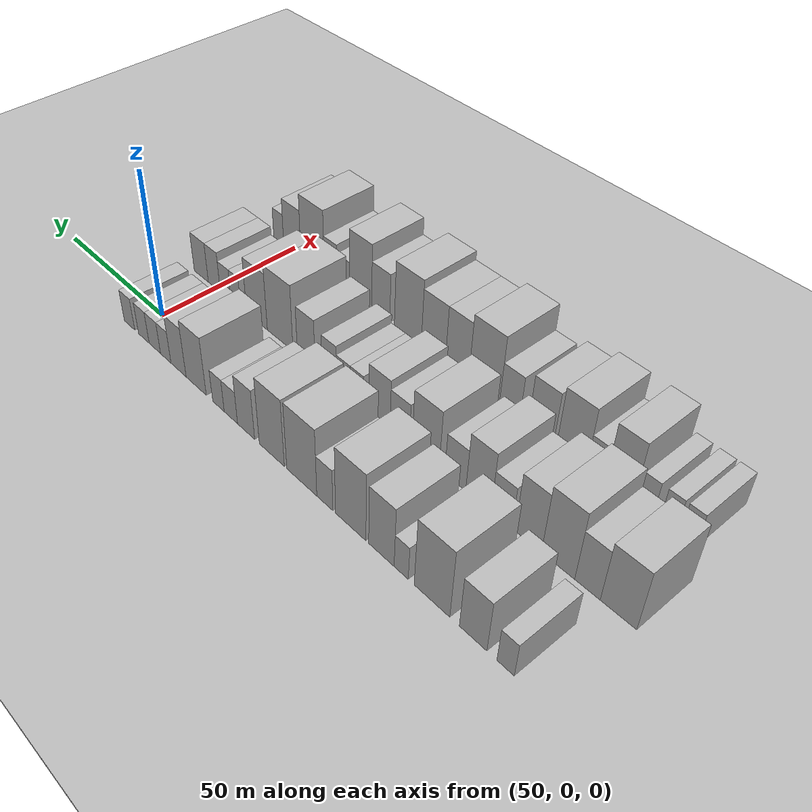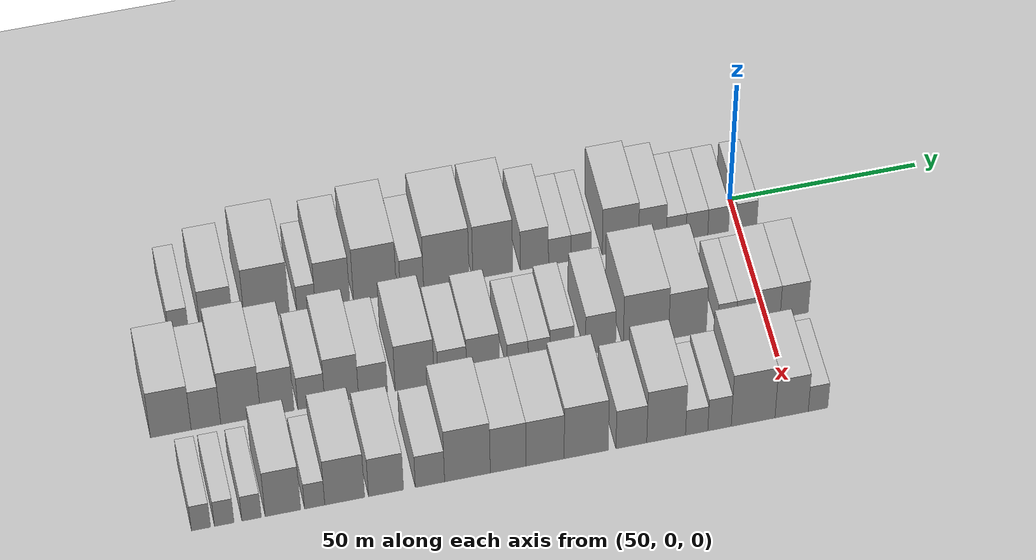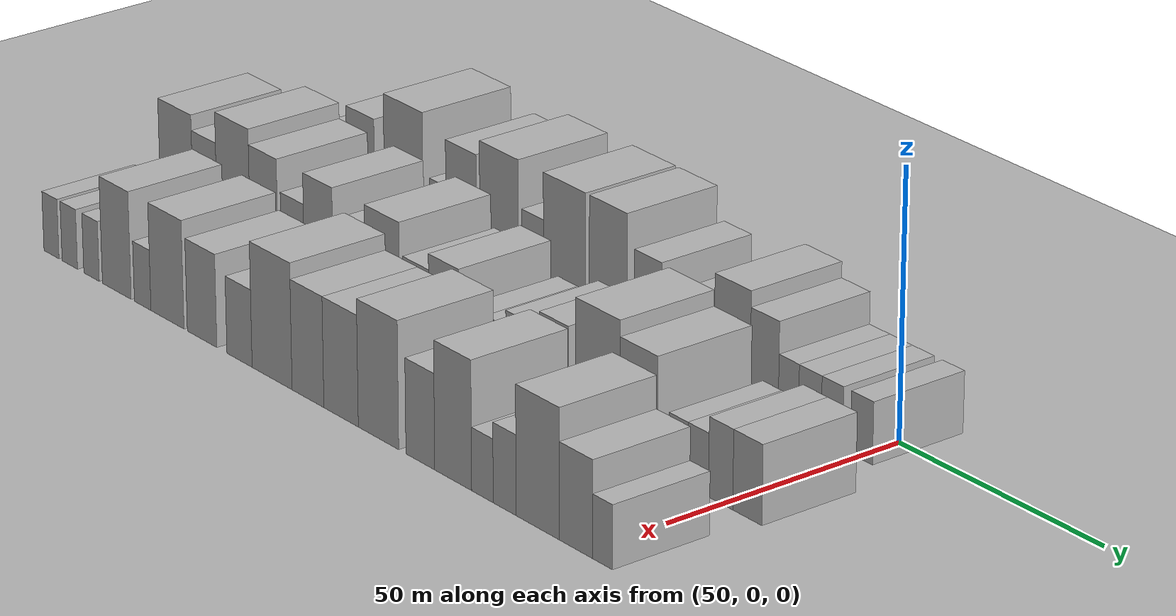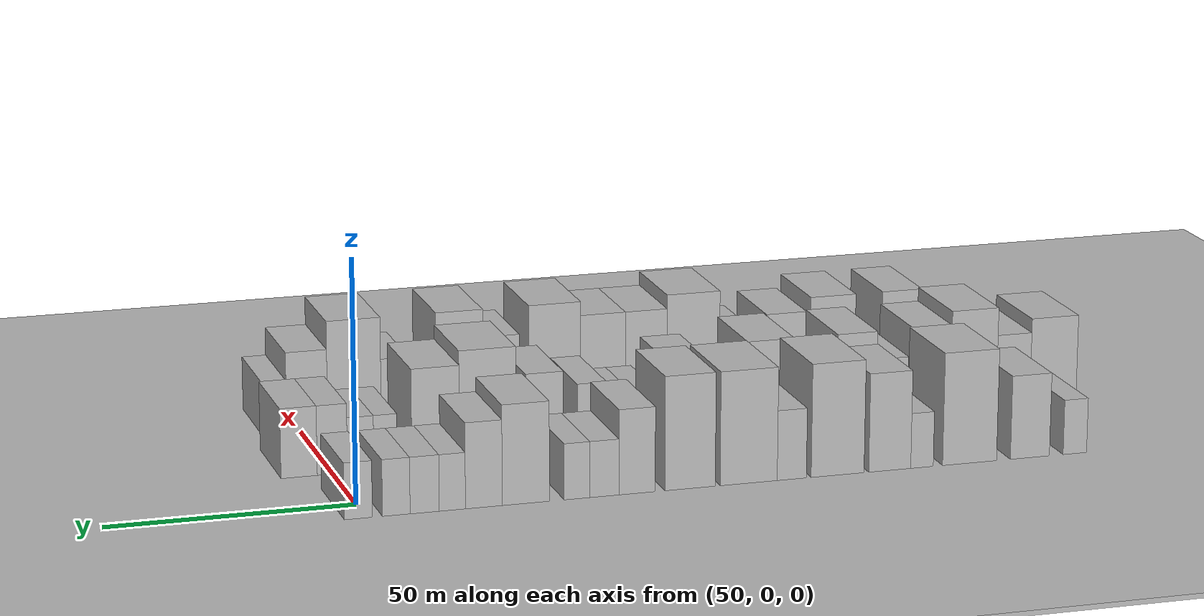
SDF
<sdf version="1.6">
 <world name="default">
  <include><name>ground_plane_1</name><uri>model://HANNAS_ground_plane</uri></include>
  <include>
   <name>ground_plane_2</name>
   <uri>model://HANNAS_ground_plane</uri>
   <pose>100 0 0  0 0 0</pose>
  </include>
  <model name="building_22">
   <static>1</static>
   <pose>50.0000 -147.5729 0 0.000000 0.000000 0.000000</pose>
   <link name="link">
    <pose>0 0 6.00 0 0 0</pose>
    <collision name="collision"><geometry><box><size>20.0000 5.1354 12.0000</size></box></geometry></collision>
    <visual name="visual">
     <cast_shadows>0</cast_shadows>
     <geometry><box><size>20.0000 5.1354 12.0000</size></box></geometry>
     <material>
      <script>
       <uri>model://HANNAS_wall/materials/scripts</uri>
       <uri>model://HANNAS_wall/materials/textures</uri>
       <name>vrc/HANNAS_wall</name>
      </script>
     </material>
    </visual>
   </link>
  </model>
  <model name="building_23">
   <static>1</static>
   <pose>50.0000 -137.7555 0 0.000000 0.000000 0.000000</pose>
   <link name="link">
    <pose>0 0 9.00 0 0 0</pose>
    <collision name="collision"><geometry><box><size>20.0000 8.4995 18.0000</size></box></geometry></collision>
    <visual name="visual">
     <cast_shadows>0</cast_shadows>
     <geometry><box><size>20.0000 8.4995 18.0000</size></box></geometry>
     <material>
      <script>
       <uri>model://HANNAS_wall/materials/scripts</uri>
       <uri>model://HANNAS_wall/materials/textures</uri>
       <name>vrc/HANNAS_wall</name>
      </script>
     </material>
    </visual>
   </link>
  </model>
  <model name="building_24">
   <static>1</static>
   <pose>50.0000 -124.6750 0 0.000000 0.000000 0.000000</pose>
   <link name="link">
    <pose>0 0 12.00 0 0 0</pose>
    <collision name="collision"><geometry><box><size>20.0000 11.6614 24.0000</size></box></geometry></collision>
    <visual name="visual">
     <cast_shadows>0</cast_shadows>
     <geometry><box><size>20.0000 11.6614 24.0000</size></box></geometry>
     <material>
      <script>
       <uri>model://HANNAS_wall/materials/scripts</uri>
       <uri>model://HANNAS_wall/materials/textures</uri>
       <name>vrc/HANNAS_wall</name>
      </script>
     </material>
    </visual>
   </link>
  </model>
  <model name="building_25">
   <static>1</static>
   <pose>50.0000 -114.4293 0 0.000000 0.000000 0.000000</pose>
   <link name="link">
    <pose>0 0 6.00 0 0 0</pose>
    <collision name="collision"><geometry><box><size>20.0000 4.8299 12.0000</size></box></geometry></collision>
    <visual name="visual">
     <cast_shadows>0</cast_shadows>
     <geometry><box><size>20.0000 4.8299 12.0000</size></box></geometry>
     <material>
      <script>
       <uri>model://HANNAS_wall/materials/scripts</uri>
       <uri>model://HANNAS_wall/materials/textures</uri>
       <name>vrc/HANNAS_wall</name>
      </script>
     </material>
    </visual>
   </link>
  </model>
  <model name="building_26">
   <static>1</static>
   <pose>50.0000 -107.5320 0 0.000000 0.000000 0.000000</pose>
   <link name="link">
    <pose>0 0 10.50 0 0 0</pose>
    <collision name="collision"><geometry><box><size>20.0000 8.9648 21.0000</size></box></geometry></collision>
    <visual name="visual">
     <cast_shadows>0</cast_shadows>
     <geometry><box><size>20.0000 8.9648 21.0000</size></box></geometry>
     <material>
      <script>
       <uri>model://HANNAS_wall/materials/scripts</uri>
       <uri>model://HANNAS_wall/materials/textures</uri>
       <name>vrc/HANNAS_wall</name>
      </script>
     </material>
    </visual>
   </link>
  </model>
  <model name="building_27">
   <static>1</static>
   <pose>50.0000 -96.4396 0 0.000000 0.000000 0.000000</pose>
   <link name="link">
    <pose>0 0 12.00 0 0 0</pose>
    <collision name="collision"><geometry><box><size>20.0000 11.2199 24.0000</size></box></geometry></collision>
    <visual name="visual">
     <cast_shadows>0</cast_shadows>
     <geometry><box><size>20.0000 11.2199 24.0000</size></box></geometry>
     <material>
      <script>
       <uri>model://HANNAS_wall/materials/scripts</uri>
       <uri>model://HANNAS_wall/materials/textures</uri>
       <name>vrc/HANNAS_wall</name>
      </script>
     </material>
    </visual>
   </link>
  </model>
  <model name="building_28">
   <static>1</static>
   <pose>50.0000 -86.7593 0 0.000000 0.000000 0.000000</pose>
   <link name="link">
    <pose>0 0 7.50 0 0 0</pose>
    <collision name="collision"><geometry><box><size>20.0000 6.1406 15.0000</size></box></geometry></collision>
    <visual name="visual">
     <cast_shadows>0</cast_shadows>
     <geometry><box><size>20.0000 6.1406 15.0000</size></box></geometry>
     <material>
      <script>
       <uri>model://HANNAS_wall/materials/scripts</uri>
       <uri>model://HANNAS_wall/materials/textures</uri>
       <name>vrc/HANNAS_wall</name>
      </script>
     </material>
    </visual>
   </link>
  </model>
  <model name="building_29">
   <static>1</static>
   <pose>50.0000 -77.7071 0 0.000000 0.000000 0.000000</pose>
   <link name="link">
    <pose>0 0 12.00 0 0 0</pose>
    <collision name="collision"><geometry><box><size>20.0000 11.9637 24.0000</size></box></geometry></collision>
    <visual name="visual">
     <cast_shadows>0</cast_shadows>
     <geometry><box><size>20.0000 11.9637 24.0000</size></box></geometry>
     <material>
      <script>
       <uri>model://HANNAS_wall/materials/scripts</uri>
       <uri>model://HANNAS_wall/materials/textures</uri>
       <name>vrc/HANNAS_wall</name>
      </script>
     </material>
    </visual>
   </link>
  </model>
  <model name="building_30">
   <static>1</static>
   <pose>50.0000 -65.4879 0 0.000000 0.000000 0.000000</pose>
   <link name="link">
    <pose>0 0 12.00 0 0 0</pose>
    <collision name="collision"><geometry><box><size>20.0000 10.4747 24.0000</size></box></geometry></collision>
    <visual name="visual">
     <cast_shadows>0</cast_shadows>
     <geometry><box><size>20.0000 10.4747 24.0000</size></box></geometry>
     <material>
      <script>
       <uri>model://HANNAS_wall/materials/scripts</uri>
       <uri>model://HANNAS_wall/materials/textures</uri>
       <name>vrc/HANNAS_wall</name>
      </script>
     </material>
    </visual>
   </link>
  </model>
  <model name="building_31">
   <static>1</static>
   <pose>50.0000 -54.5210 0 0.000000 0.000000 0.000000</pose>
   <link name="link">
    <pose>0 0 9.00 0 0 0</pose>
    <collision name="collision"><geometry><box><size>20.0000 7.4592 18.0000</size></box></geometry></collision>
    <visual name="visual">
     <cast_shadows>0</cast_shadows>
     <geometry><box><size>20.0000 7.4592 18.0000</size></box></geometry>
     <material>
      <script>
       <uri>model://HANNAS_wall/materials/scripts</uri>
       <uri>model://HANNAS_wall/materials/textures</uri>
       <name>vrc/HANNAS_wall</name>
      </script>
     </material>
    </visual>
   </link>
  </model>
  <model name="building_32">
   <static>1</static>
   <pose>50.0000 -47.8007 0 0.000000 0.000000 0.000000</pose>
   <link name="link">
    <pose>0 0 6.00 0 0 0</pose>
    <collision name="collision"><geometry><box><size>20.0000 5.9814 12.0000</size></box></geometry></collision>
    <visual name="visual">
     <cast_shadows>0</cast_shadows>
     <geometry><box><size>20.0000 5.9814 12.0000</size></box></geometry>
     <material>
      <script>
       <uri>model://HANNAS_wall/materials/scripts</uri>
       <uri>model://HANNAS_wall/materials/textures</uri>
       <name>vrc/HANNAS_wall</name>
      </script>
     </material>
    </visual>
   </link>
  </model>
  <model name="building_33">
   <static>1</static>
   <pose>50.0000 -42.1817 0 0.000000 0.000000 0.000000</pose>
   <link name="link">
    <pose>0 0 6.00 0 0 0</pose>
    <collision name="collision"><geometry><box><size>20.0000 5.2565 12.0000</size></box></geometry></collision>
    <visual name="visual">
     <cast_shadows>0</cast_shadows>
     <geometry><box><size>20.0000 5.2565 12.0000</size></box></geometry>
     <material>
      <script>
       <uri>model://HANNAS_wall/materials/scripts</uri>
       <uri>model://HANNAS_wall/materials/textures</uri>
       <name>vrc/HANNAS_wall</name>
      </script>
     </material>
    </visual>
   </link>
  </model>
  <model name="building_34">
   <static>1</static>
   <pose>50.0000 -31.7679 0 0.000000 0.000000 0.000000</pose>
   <link name="link">
    <pose>0 0 10.50 0 0 0</pose>
    <collision name="collision"><geometry><box><size>20.0000 9.5712 21.0000</size></box></geometry></collision>
    <visual name="visual">
     <cast_shadows>0</cast_shadows>
     <geometry><box><size>20.0000 9.5712 21.0000</size></box></geometry>
     <material>
      <script>
       <uri>model://HANNAS_wall/materials/scripts</uri>
       <uri>model://HANNAS_wall/materials/textures</uri>
       <name>vrc/HANNAS_wall</name>
      </script>
     </material>
    </visual>
   </link>
  </model>
  <model name="building_35">
   <static>1</static>
   <pose>50.0000 -23.2715 0 0.000000 0.000000 0.000000</pose>
   <link name="link">
    <pose>0 0 9.00 0 0 0</pose>
    <collision name="collision"><geometry><box><size>20.0000 7.4215 18.0000</size></box></geometry></collision>
    <visual name="visual">
     <cast_shadows>0</cast_shadows>
     <geometry><box><size>20.0000 7.4215 18.0000</size></box></geometry>
     <material>
      <script>
       <uri>model://HANNAS_wall/materials/scripts</uri>
       <uri>model://HANNAS_wall/materials/textures</uri>
       <name>vrc/HANNAS_wall</name>
      </script>
     </material>
    </visual>
   </link>
  </model>
  <model name="building_36">
   <static>1</static>
   <pose>50.0000 -16.9313 0 0.000000 0.000000 0.000000</pose>
   <link name="link">
    <pose>0 0 6.00 0 0 0</pose>
    <collision name="collision"><geometry><box><size>20.0000 5.2590 12.0000</size></box></geometry></collision>
    <visual name="visual">
     <cast_shadows>0</cast_shadows>
     <geometry><box><size>20.0000 5.2590 12.0000</size></box></geometry>
     <material>
      <script>
       <uri>model://HANNAS_wall/materials/scripts</uri>
       <uri>model://HANNAS_wall/materials/textures</uri>
       <name>vrc/HANNAS_wall</name>
      </script>
     </material>
    </visual>
   </link>
  </model>
  <model name="building_37">
   <static>1</static>
   <pose>50.0000 -11.3831 0 0.000000 0.000000 0.000000</pose>
   <link name="link">
    <pose>0 0 6.00 0 0 0</pose>
    <collision name="collision"><geometry><box><size>20.0000 5.8374 12.0000</size></box></geometry></collision>
    <visual name="visual">
     <cast_shadows>0</cast_shadows>
     <geometry><box><size>20.0000 5.8374 12.0000</size></box></geometry>
     <material>
      <script>
       <uri>model://HANNAS_wall/materials/scripts</uri>
       <uri>model://HANNAS_wall/materials/textures</uri>
       <name>vrc/HANNAS_wall</name>
      </script>
     </material>
    </visual>
   </link>
  </model>
  <model name="building_38">
   <static>1</static>
   <pose>50.0000 -5.7027 0 0.000000 0.000000 0.000000</pose>
   <link name="link">
    <pose>0 0 6.00 0 0 0</pose>
    <collision name="collision"><geometry><box><size>20.0000 5.5235 12.0000</size></box></geometry></collision>
    <visual name="visual">
     <cast_shadows>0</cast_shadows>
     <geometry><box><size>20.0000 5.5235 12.0000</size></box></geometry>
     <material>
      <script>
       <uri>model://HANNAS_wall/materials/scripts</uri>
       <uri>model://HANNAS_wall/materials/textures</uri>
       <name>vrc/HANNAS_wall</name>
      </script>
     </material>
    </visual>
   </link>
  </model>
  <model name="building_39">
   <static>1</static>
   <pose>50.0000 1.8456 0 0.000000 0.000000 0.000000</pose>
   <link name="link">
    <pose>0 0 6.00 0 0 0</pose>
    <collision name="collision"><geometry><box><size>20.0000 5.5731 12.0000</size></box></geometry></collision>
    <visual name="visual">
     <cast_shadows>0</cast_shadows>
     <geometry><box><size>20.0000 5.5731 12.0000</size></box></geometry>
     <material>
      <script>
       <uri>model://HANNAS_wall/materials/scripts</uri>
       <uri>model://HANNAS_wall/materials/textures</uri>
       <name>vrc/HANNAS_wall</name>
      </script>
     </material>
    </visual>
   </link>
  </model>
  <model name="building_98">
   <static>1</static>
   <pose>79.0000 -154.7618 0 0.000000 0.000000 0.000000</pose>
   <link name="link">
    <pose>0 0 10.50 0 0 0</pose>
    <collision name="collision"><geometry><box><size>20.0000 10.4234 21.0000</size></box></geometry></collision>
    <visual name="visual">
     <cast_shadows>0</cast_shadows>
     <geometry><box><size>20.0000 10.4234 21.0000</size></box></geometry>
     <material>
      <script>
       <uri>model://HANNAS_wall/materials/scripts</uri>
       <uri>model://HANNAS_wall/materials/textures</uri>
       <name>vrc/HANNAS_wall</name>
      </script>
     </material>
    </visual>
   </link>
  </model>
  <model name="building_99">
   <static>1</static>
   <pose>79.0000 -145.7677 0 0.000000 0.000000 0.000000</pose>
   <link name="link">
    <pose>0 0 9.00 0 0 0</pose>
    <collision name="collision"><geometry><box><size>20.0000 7.5649 18.0000</size></box></geometry></collision>
    <visual name="visual">
     <cast_shadows>0</cast_shadows>
     <geometry><box><size>20.0000 7.5649 18.0000</size></box></geometry>
     <material>
      <script>
       <uri>model://HANNAS_wall/materials/scripts</uri>
       <uri>model://HANNAS_wall/materials/textures</uri>
       <name>vrc/HANNAS_wall</name>
      </script>
     </material>
    </visual>
   </link>
  </model>
  <model name="building_100">
   <static>1</static>
   <pose>79.0000 -136.8499 0 0.000000 0.000000 0.000000</pose>
   <link name="link">
    <pose>0 0 12.00 0 0 0</pose>
    <collision name="collision"><geometry><box><size>20.0000 10.2707 24.0000</size></box></geometry></collision>
    <visual name="visual">
     <cast_shadows>0</cast_shadows>
     <geometry><box><size>20.0000 10.2707 24.0000</size></box></geometry>
     <material>
      <script>
       <uri>model://HANNAS_wall/materials/scripts</uri>
       <uri>model://HANNAS_wall/materials/textures</uri>
       <name>vrc/HANNAS_wall</name>
      </script>
     </material>
    </visual>
   </link>
  </model>
  <model name="building_101">
   <static>1</static>
   <pose>79.0000 -127.4600 0 0.000000 0.000000 0.000000</pose>
   <link name="link">
    <pose>0 0 10.50 0 0 0</pose>
    <collision name="collision"><geometry><box><size>20.0000 8.5091 21.0000</size></box></geometry></collision>
    <visual name="visual">
     <cast_shadows>0</cast_shadows>
     <geometry><box><size>20.0000 8.5091 21.0000</size></box></geometry>
     <material>
      <script>
       <uri>model://HANNAS_wall/materials/scripts</uri>
       <uri>model://HANNAS_wall/materials/textures</uri>
       <name>vrc/HANNAS_wall</name>
      </script>
     </material>
    </visual>
   </link>
  </model>
  <model name="building_102">
   <static>1</static>
   <pose>79.0000 -118.7304 0 0.000000 0.000000 0.000000</pose>
   <link name="link">
    <pose>0 0 7.50 0 0 0</pose>
    <collision name="collision"><geometry><box><size>20.0000 6.9502 15.0000</size></box></geometry></collision>
    <visual name="visual">
     <cast_shadows>0</cast_shadows>
     <geometry><box><size>20.0000 6.9502 15.0000</size></box></geometry>
     <material>
      <script>
       <uri>model://HANNAS_wall/materials/scripts</uri>
       <uri>model://HANNAS_wall/materials/textures</uri>
       <name>vrc/HANNAS_wall</name>
      </script>
     </material>
    </visual>
   </link>
  </model>
  <model name="building_103">
   <static>1</static>
   <pose>79.0000 -110.9171 0 0.000000 0.000000 0.000000</pose>
   <link name="link">
    <pose>0 0 10.50 0 0 0</pose>
    <collision name="collision"><geometry><box><size>20.0000 8.6764 21.0000</size></box></geometry></collision>
    <visual name="visual">
     <cast_shadows>0</cast_shadows>
     <geometry><box><size>20.0000 8.6764 21.0000</size></box></geometry>
     <material>
      <script>
       <uri>model://HANNAS_wall/materials/scripts</uri>
       <uri>model://HANNAS_wall/materials/textures</uri>
       <name>vrc/HANNAS_wall</name>
      </script>
     </material>
    </visual>
   </link>
  </model>
  <model name="building_104">
   <static>1</static>
   <pose>79.0000 -102.8480 0 0.000000 0.000000 0.000000</pose>
   <link name="link">
    <pose>0 0 7.50 0 0 0</pose>
    <collision name="collision"><geometry><box><size>20.0000 7.4617 15.0000</size></box></geometry></collision>
    <visual name="visual">
     <cast_shadows>0</cast_shadows>
     <geometry><box><size>20.0000 7.4617 15.0000</size></box></geometry>
     <material>
      <script>
       <uri>model://HANNAS_wall/materials/scripts</uri>
       <uri>model://HANNAS_wall/materials/textures</uri>
       <name>vrc/HANNAS_wall</name>
      </script>
     </material>
    </visual>
   </link>
  </model>
  <model name="building_105">
   <static>1</static>
   <pose>79.0000 -92.0790 0 0.000000 0.000000 0.000000</pose>
   <link name="link">
    <pose>0 0 10.50 0 0 0</pose>
    <collision name="collision"><geometry><box><size>20.0000 10.0763 21.0000</size></box></geometry></collision>
    <visual name="visual">
     <cast_shadows>0</cast_shadows>
     <geometry><box><size>20.0000 10.0763 21.0000</size></box></geometry>
     <material>
      <script>
       <uri>model://HANNAS_wall/materials/scripts</uri>
       <uri>model://HANNAS_wall/materials/textures</uri>
       <name>vrc/HANNAS_wall</name>
      </script>
     </material>
    </visual>
   </link>
  </model>
  <model name="building_106">
   <static>1</static>
   <pose>79.0000 -82.3220 0 0.000000 0.000000 0.000000</pose>
   <link name="link">
    <pose>0 0 7.50 0 0 0</pose>
    <collision name="collision"><geometry><box><size>20.0000 7.4376 15.0000</size></box></geometry></collision>
    <visual name="visual">
     <cast_shadows>0</cast_shadows>
     <geometry><box><size>20.0000 7.4376 15.0000</size></box></geometry>
     <material>
      <script>
       <uri>model://HANNAS_wall/materials/scripts</uri>
       <uri>model://HANNAS_wall/materials/textures</uri>
       <name>vrc/HANNAS_wall</name>
      </script>
     </material>
    </visual>
   </link>
  </model>
  <model name="building_107">
   <static>1</static>
   <pose>79.0000 -74.3436 0 0.000000 0.000000 0.000000</pose>
   <link name="link">
    <pose>0 0 9.00 0 0 0</pose>
    <collision name="collision"><geometry><box><size>20.0000 8.5192 18.0000</size></box></geometry></collision>
    <visual name="visual">
     <cast_shadows>0</cast_shadows>
     <geometry><box><size>20.0000 8.5192 18.0000</size></box></geometry>
     <material>
      <script>
       <uri>model://HANNAS_wall/materials/scripts</uri>
       <uri>model://HANNAS_wall/materials/textures</uri>
       <name>vrc/HANNAS_wall</name>
      </script>
     </material>
    </visual>
   </link>
  </model>
  <model name="building_108">
   <static>1</static>
   <pose>79.0000 -65.3470 0 0.000000 0.000000 0.000000</pose>
   <link name="link">
    <pose>0 0 6.00 0 0 0</pose>
    <collision name="collision"><geometry><box><size>20.0000 5.4741 12.0000</size></box></geometry></collision>
    <visual name="visual">
     <cast_shadows>0</cast_shadows>
     <geometry><box><size>20.0000 5.4741 12.0000</size></box></geometry>
     <material>
      <script>
       <uri>model://HANNAS_wall/materials/scripts</uri>
       <uri>model://HANNAS_wall/materials/textures</uri>
       <name>vrc/HANNAS_wall</name>
      </script>
     </material>
    </visual>
   </link>
  </model>
  <model name="building_109">
   <static>1</static>
   <pose>79.0000 -59.7610 0 0.000000 0.000000 0.000000</pose>
   <link name="link">
    <pose>0 0 6.00 0 0 0</pose>
    <collision name="collision"><geometry><box><size>20.0000 5.6979 12.0000</size></box></geometry></collision>
    <visual name="visual">
     <cast_shadows>0</cast_shadows>
     <geometry><box><size>20.0000 5.6979 12.0000</size></box></geometry>
     <material>
      <script>
       <uri>model://HANNAS_wall/materials/scripts</uri>
       <uri>model://HANNAS_wall/materials/textures</uri>
       <name>vrc/HANNAS_wall</name>
      </script>
     </material>
    </visual>
   </link>
  </model>
  <model name="building_110">
   <static>1</static>
   <pose>79.0000 -53.7962 0 0.000000 0.000000 0.000000</pose>
   <link name="link">
    <pose>0 0 7.50 0 0 0</pose>
    <collision name="collision"><geometry><box><size>20.0000 6.2316 15.0000</size></box></geometry></collision>
    <visual name="visual">
     <cast_shadows>0</cast_shadows>
     <geometry><box><size>20.0000 6.2316 15.0000</size></box></geometry>
     <material>
      <script>
       <uri>model://HANNAS_wall/materials/scripts</uri>
       <uri>model://HANNAS_wall/materials/textures</uri>
       <name>vrc/HANNAS_wall</name>
      </script>
     </material>
    </visual>
   </link>
  </model>
  <model name="building_111">
   <static>1</static>
   <pose>79.0000 -43.7526 0 0.000000 0.000000 0.000000</pose>
   <link name="link">
    <pose>0 0 9.00 0 0 0</pose>
    <collision name="collision"><geometry><box><size>20.0000 7.8557 18.0000</size></box></geometry></collision>
    <visual name="visual">
     <cast_shadows>0</cast_shadows>
     <geometry><box><size>20.0000 7.8557 18.0000</size></box></geometry>
     <material>
      <script>
       <uri>model://HANNAS_wall/materials/scripts</uri>
       <uri>model://HANNAS_wall/materials/textures</uri>
       <name>vrc/HANNAS_wall</name>
      </script>
     </material>
    </visual>
   </link>
  </model>
  <model name="building_112">
   <static>1</static>
   <pose>79.0000 -31.8844 0 0.000000 0.000000 0.000000</pose>
   <link name="link">
    <pose>0 0 12.00 0 0 0</pose>
    <collision name="collision"><geometry><box><size>20.0000 11.8805 24.0000</size></box></geometry></collision>
    <visual name="visual">
     <cast_shadows>0</cast_shadows>
     <geometry><box><size>20.0000 11.8805 24.0000</size></box></geometry>
     <material>
      <script>
       <uri>model://HANNAS_wall/materials/scripts</uri>
       <uri>model://HANNAS_wall/materials/textures</uri>
       <name>vrc/HANNAS_wall</name>
      </script>
     </material>
    </visual>
   </link>
  </model>
  <model name="building_113">
   <static>1</static>
   <pose>79.0000 -20.9908 0 0.000000 0.000000 0.000000</pose>
   <link name="link">
    <pose>0 0 10.50 0 0 0</pose>
    <collision name="collision"><geometry><box><size>20.0000 9.9066 21.0000</size></box></geometry></collision>
    <visual name="visual">
     <cast_shadows>0</cast_shadows>
     <geometry><box><size>20.0000 9.9066 21.0000</size></box></geometry>
     <material>
      <script>
       <uri>model://HANNAS_wall/materials/scripts</uri>
       <uri>model://HANNAS_wall/materials/textures</uri>
       <name>vrc/HANNAS_wall</name>
      </script>
     </material>
    </visual>
   </link>
  </model>
  <model name="building_114">
   <static>1</static>
   <pose>79.0000 -10.6145 0 0.000000 0.000000 0.000000</pose>
   <link name="link">
    <pose>0 0 6.00 0 0 0</pose>
    <collision name="collision"><geometry><box><size>20.0000 4.8462 12.0000</size></box></geometry></collision>
    <visual name="visual">
     <cast_shadows>0</cast_shadows>
     <geometry><box><size>20.0000 4.8462 12.0000</size></box></geometry>
     <material>
      <script>
       <uri>model://HANNAS_wall/materials/scripts</uri>
       <uri>model://HANNAS_wall/materials/textures</uri>
       <name>vrc/HANNAS_wall</name>
      </script>
     </material>
    </visual>
   </link>
  </model>
  <model name="building_115">
   <static>1</static>
   <pose>79.0000 -5.4730 0 0.000000 0.000000 0.000000</pose>
   <link name="link">
    <pose>0 0 6.00 0 0 0</pose>
    <collision name="collision"><geometry><box><size>20.0000 5.4368 12.0000</size></box></geometry></collision>
    <visual name="visual">
     <cast_shadows>0</cast_shadows>
     <geometry><box><size>20.0000 5.4368 12.0000</size></box></geometry>
     <material>
      <script>
       <uri>model://HANNAS_wall/materials/scripts</uri>
       <uri>model://HANNAS_wall/materials/textures</uri>
       <name>vrc/HANNAS_wall</name>
      </script>
     </material>
    </visual>
   </link>
  </model>
  <model name="building_116">
   <static>1</static>
   <pose>79.0000 0.3407 0 0.000000 0.000000 0.000000</pose>
   <link name="link">
    <pose>0 0 7.50 0 0 0</pose>
    <collision name="collision"><geometry><box><size>20.0000 6.1906 15.0000</size></box></geometry></collision>
    <visual name="visual">
     <cast_shadows>0</cast_shadows>
     <geometry><box><size>20.0000 6.1906 15.0000</size></box></geometry>
     <material>
      <script>
       <uri>model://HANNAS_wall/materials/scripts</uri>
       <uri>model://HANNAS_wall/materials/textures</uri>
       <name>vrc/HANNAS_wall</name>
      </script>
     </material>
    </visual>
   </link>
  </model>
  <model name="building_117">
   <static>1</static>
   <pose>79.0000 7.1395 0 0.000000 0.000000 0.000000</pose>
   <link name="link">
    <pose>0 0 7.50 0 0 0</pose>
    <collision name="collision"><geometry><box><size>20.0000 7.4070 15.0000</size></box></geometry></collision>
    <visual name="visual">
     <cast_shadows>0</cast_shadows>
     <geometry><box><size>20.0000 7.4070 15.0000</size></box></geometry>
     <material>
      <script>
       <uri>model://HANNAS_wall/materials/scripts</uri>
       <uri>model://HANNAS_wall/materials/textures</uri>
       <name>vrc/HANNAS_wall</name>
      </script>
     </material>
    </visual>
   </link>
  </model>
  <model name="building_172">
   <static>1</static>
   <pose>108.0000 -152.2958 0 0.000000 0.000000 0.000000</pose>
   <link name="link">
    <pose>0 0 6.00 0 0 0</pose>
    <collision name="collision"><geometry><box><size>20.0000 4.8107 12.0000</size></box></geometry></collision>
    <visual name="visual">
     <cast_shadows>0</cast_shadows>
     <geometry><box><size>20.0000 4.8107 12.0000</size></box></geometry>
     <material>
      <script>
       <uri>model://HANNAS_wall/materials/scripts</uri>
       <uri>model://HANNAS_wall/materials/textures</uri>
       <name>vrc/HANNAS_wall</name>
      </script>
     </material>
    </visual>
   </link>
  </model>
  <model name="building_173">
   <static>1</static>
   <pose>108.0000 -146.4352 0 0.000000 0.000000 0.000000</pose>
   <link name="link">
    <pose>0 0 6.00 0 0 0</pose>
    <collision name="collision"><geometry><box><size>20.0000 4.9103 12.0000</size></box></geometry></collision>
    <visual name="visual">
     <cast_shadows>0</cast_shadows>
     <geometry><box><size>20.0000 4.9103 12.0000</size></box></geometry>
     <material>
      <script>
       <uri>model://HANNAS_wall/materials/scripts</uri>
       <uri>model://HANNAS_wall/materials/textures</uri>
       <name>vrc/HANNAS_wall</name>
      </script>
     </material>
    </visual>
   </link>
  </model>
  <model name="building_174">
   <static>1</static>
   <pose>108.0000 -139.5360 0 0.000000 0.000000 0.000000</pose>
   <link name="link">
    <pose>0 0 6.00 0 0 0</pose>
    <collision name="collision"><geometry><box><size>20.0000 4.8881 12.0000</size></box></geometry></collision>
    <visual name="visual">
     <cast_shadows>0</cast_shadows>
     <geometry><box><size>20.0000 4.8881 12.0000</size></box></geometry>
     <material>
      <script>
       <uri>model://HANNAS_wall/materials/scripts</uri>
       <uri>model://HANNAS_wall/materials/textures</uri>
       <name>vrc/HANNAS_wall</name>
      </script>
     </material>
    </visual>
   </link>
  </model>
  <model name="building_175">
   <static>1</static>
   <pose>108.0000 -131.6073 0 0.000000 0.000000 0.000000</pose>
   <link name="link">
    <pose>0 0 10.50 0 0 0</pose>
    <collision name="collision"><geometry><box><size>20.0000 8.9692 21.0000</size></box></geometry></collision>
    <visual name="visual">
     <cast_shadows>0</cast_shadows>
     <geometry><box><size>20.0000 8.9692 21.0000</size></box></geometry>
     <material>
      <script>
       <uri>model://HANNAS_wall/materials/scripts</uri>
       <uri>model://HANNAS_wall/materials/textures</uri>
       <name>vrc/HANNAS_wall</name>
      </script>
     </material>
    </visual>
   </link>
  </model>
  <model name="building_176">
   <static>1</static>
   <pose>108.0000 -123.5658 0 0.000000 0.000000 0.000000</pose>
   <link name="link">
    <pose>0 0 6.00 0 0 0</pose>
    <collision name="collision"><geometry><box><size>20.0000 5.1138 12.0000</size></box></geometry></collision>
    <visual name="visual">
     <cast_shadows>0</cast_shadows>
     <geometry><box><size>20.0000 5.1138 12.0000</size></box></geometry>
     <material>
      <script>
       <uri>model://HANNAS_wall/materials/scripts</uri>
       <uri>model://HANNAS_wall/materials/textures</uri>
       <name>vrc/HANNAS_wall</name>
      </script>
     </material>
    </visual>
   </link>
  </model>
  <model name="building_177">
   <static>1</static>
   <pose>108.0000 -115.9523 0 0.000000 0.000000 0.000000</pose>
   <link name="link">
    <pose>0 0 10.50 0 0 0</pose>
    <collision name="collision"><geometry><box><size>20.0000 10.1131 21.0000</size></box></geometry></collision>
    <visual name="visual">
     <cast_shadows>0</cast_shadows>
     <geometry><box><size>20.0000 10.1131 21.0000</size></box></geometry>
     <material>
      <script>
       <uri>model://HANNAS_wall/materials/scripts</uri>
       <uri>model://HANNAS_wall/materials/textures</uri>
       <name>vrc/HANNAS_wall</name>
      </script>
     </material>
    </visual>
   </link>
  </model>
  <model name="building_178">
   <static>1</static>
   <pose>108.0000 -105.4403 0 0.000000 0.000000 0.000000</pose>
   <link name="link">
    <pose>0 0 9.00 0 0 0</pose>
    <collision name="collision"><geometry><box><size>20.0000 8.9109 18.0000</size></box></geometry></collision>
    <visual name="visual">
     <cast_shadows>0</cast_shadows>
     <geometry><box><size>20.0000 8.9109 18.0000</size></box></geometry>
     <material>
      <script>
       <uri>model://HANNAS_wall/materials/scripts</uri>
       <uri>model://HANNAS_wall/materials/textures</uri>
       <name>vrc/HANNAS_wall</name>
      </script>
     </material>
    </visual>
   </link>
  </model>
  <model name="building_179">
   <static>1</static>
   <pose>108.0000 -94.2471 0 0.000000 0.000000 0.000000</pose>
   <link name="link">
    <pose>0 0 7.50 0 0 0</pose>
    <collision name="collision"><geometry><box><size>20.0000 7.4755 15.0000</size></box></geometry></collision>
    <visual name="visual">
     <cast_shadows>0</cast_shadows>
     <geometry><box><size>20.0000 7.4755 15.0000</size></box></geometry>
     <material>
      <script>
       <uri>model://HANNAS_wall/materials/scripts</uri>
       <uri>model://HANNAS_wall/materials/textures</uri>
       <name>vrc/HANNAS_wall</name>
      </script>
     </material>
    </visual>
   </link>
  </model>
  <model name="building_180">
   <static>1</static>
   <pose>108.0000 -84.6619 0 0.000000 0.000000 0.000000</pose>
   <link name="link">
    <pose>0 0 12.00 0 0 0</pose>
    <collision name="collision"><geometry><box><size>20.0000 11.6948 24.0000</size></box></geometry></collision>
    <visual name="visual">
     <cast_shadows>0</cast_shadows>
     <geometry><box><size>20.0000 11.6948 24.0000</size></box></geometry>
     <material>
      <script>
       <uri>model://HANNAS_wall/materials/scripts</uri>
       <uri>model://HANNAS_wall/materials/textures</uri>
       <name>vrc/HANNAS_wall</name>
      </script>
     </material>
    </visual>
   </link>
  </model>
  <model name="building_181">
   <static>1</static>
   <pose>108.0000 -74.2326 0 0.000000 0.000000 0.000000</pose>
   <link name="link">
    <pose>0 0 10.50 0 0 0</pose>
    <collision name="collision"><geometry><box><size>20.0000 9.1639 21.0000</size></box></geometry></collision>
    <visual name="visual">
     <cast_shadows>0</cast_shadows>
     <geometry><box><size>20.0000 9.1639 21.0000</size></box></geometry>
     <material>
      <script>
       <uri>model://HANNAS_wall/materials/scripts</uri>
       <uri>model://HANNAS_wall/materials/textures</uri>
       <name>vrc/HANNAS_wall</name>
      </script>
     </material>
    </visual>
   </link>
  </model>
  <model name="building_182">
   <static>1</static>
   <pose>108.0000 -64.7552 0 0.000000 0.000000 0.000000</pose>
   <link name="link">
    <pose>0 0 10.50 0 0 0</pose>
    <collision name="collision"><geometry><box><size>20.0000 9.7910 21.0000</size></box></geometry></collision>
    <visual name="visual">
     <cast_shadows>0</cast_shadows>
     <geometry><box><size>20.0000 9.7910 21.0000</size></box></geometry>
     <material>
      <script>
       <uri>model://HANNAS_wall/materials/scripts</uri>
       <uri>model://HANNAS_wall/materials/textures</uri>
       <name>vrc/HANNAS_wall</name>
      </script>
     </material>
    </visual>
   </link>
  </model>
  <model name="building_183">
   <static>1</static>
   <pose>108.0000 -54.2004 0 0.000000 0.000000 0.000000</pose>
   <link name="link">
    <pose>0 0 12.00 0 0 0</pose>
    <collision name="collision"><geometry><box><size>20.0000 11.3186 24.0000</size></box></geometry></collision>
    <visual name="visual">
     <cast_shadows>0</cast_shadows>
     <geometry><box><size>20.0000 11.3186 24.0000</size></box></geometry>
     <material>
      <script>
       <uri>model://HANNAS_wall/materials/scripts</uri>
       <uri>model://HANNAS_wall/materials/textures</uri>
       <name>vrc/HANNAS_wall</name>
      </script>
     </material>
    </visual>
   </link>
  </model>
  <model name="building_184">
   <static>1</static>
   <pose>108.0000 -42.5718 0 0.000000 0.000000 0.000000</pose>
   <link name="link">
    <pose>0 0 9.00 0 0 0</pose>
    <collision name="collision"><geometry><box><size>20.0000 7.9386 18.0000</size></box></geometry></collision>
    <visual name="visual">
     <cast_shadows>0</cast_shadows>
     <geometry><box><size>20.0000 7.9386 18.0000</size></box></geometry>
     <material>
      <script>
       <uri>model://HANNAS_wall/materials/scripts</uri>
       <uri>model://HANNAS_wall/materials/textures</uri>
       <name>vrc/HANNAS_wall</name>
      </script>
     </material>
    </visual>
   </link>
  </model>
  <model name="building_185">
   <static>1</static>
   <pose>108.0000 -33.5872 0 0.000000 0.000000 0.000000</pose>
   <link name="link">
    <pose>0 0 12.00 0 0 0</pose>
    <collision name="collision"><geometry><box><size>20.0000 10.0305 24.0000</size></box></geometry></collision>
    <visual name="visual">
     <cast_shadows>0</cast_shadows>
     <geometry><box><size>20.0000 10.0305 24.0000</size></box></geometry>
     <material>
      <script>
       <uri>model://HANNAS_wall/materials/scripts</uri>
       <uri>model://HANNAS_wall/materials/textures</uri>
       <name>vrc/HANNAS_wall</name>
      </script>
     </material>
    </visual>
   </link>
  </model>
  <model name="building_186">
   <static>1</static>
   <pose>108.0000 -25.6814 0 0.000000 0.000000 0.000000</pose>
   <link name="link">
    <pose>0 0 6.00 0 0 0</pose>
    <collision name="collision"><geometry><box><size>20.0000 5.7811 12.0000</size></box></geometry></collision>
    <visual name="visual">
     <cast_shadows>0</cast_shadows>
     <geometry><box><size>20.0000 5.7811 12.0000</size></box></geometry>
     <material>
      <script>
       <uri>model://HANNAS_wall/materials/scripts</uri>
       <uri>model://HANNAS_wall/materials/textures</uri>
       <name>vrc/HANNAS_wall</name>
      </script>
     </material>
    </visual>
   </link>
  </model>
  <model name="building_187">
   <static>1</static>
   <pose>108.0000 -19.7534 0 0.000000 0.000000 0.000000</pose>
   <link name="link">
    <pose>0 0 7.50 0 0 0</pose>
    <collision name="collision"><geometry><box><size>20.0000 6.0749 15.0000</size></box></geometry></collision>
    <visual name="visual">
     <cast_shadows>0</cast_shadows>
     <geometry><box><size>20.0000 6.0749 15.0000</size></box></geometry>
     <material>
      <script>
       <uri>model://HANNAS_wall/materials/scripts</uri>
       <uri>model://HANNAS_wall/materials/textures</uri>
       <name>vrc/HANNAS_wall</name>
      </script>
     </material>
    </visual>
   </link>
  </model>
  <model name="building_188">
   <static>1</static>
   <pose>108.0000 -11.0256 0 0.000000 0.000000 0.000000</pose>
   <link name="link">
    <pose>0 0 12.00 0 0 0</pose>
    <collision name="collision"><geometry><box><size>20.0000 11.3808 24.0000</size></box></geometry></collision>
    <visual name="visual">
     <cast_shadows>0</cast_shadows>
     <geometry><box><size>20.0000 11.3808 24.0000</size></box></geometry>
     <material>
      <script>
       <uri>model://HANNAS_wall/materials/scripts</uri>
       <uri>model://HANNAS_wall/materials/textures</uri>
       <name>vrc/HANNAS_wall</name>
      </script>
     </material>
    </visual>
   </link>
  </model>
  <model name="building_189">
   <static>1</static>
   <pose>108.0000 -1.0093 0 0.000000 0.000000 0.000000</pose>
   <link name="link">
    <pose>0 0 9.00 0 0 0</pose>
    <collision name="collision"><geometry><box><size>20.0000 8.6519 18.0000</size></box></geometry></collision>
    <visual name="visual">
     <cast_shadows>0</cast_shadows>
     <geometry><box><size>20.0000 8.6519 18.0000</size></box></geometry>
     <material>
      <script>
       <uri>model://HANNAS_wall/materials/scripts</uri>
       <uri>model://HANNAS_wall/materials/textures</uri>
       <name>vrc/HANNAS_wall</name>
      </script>
     </material>
    </visual>
   </link>
  </model>
  <model name="building_190">
   <static>1</static>
   <pose>108.0000 5.8564 0 0.000000 0.000000 0.000000</pose>
   <link name="link">
    <pose>0 0 6.00 0 0 0</pose>
    <collision name="collision"><geometry><box><size>20.0000 5.0795 12.0000</size></box></geometry></collision>
    <visual name="visual">
     <cast_shadows>0</cast_shadows>
     <geometry><box><size>20.0000 5.0795 12.0000</size></box></geometry>
     <material>
      <script>
       <uri>model://HANNAS_wall/materials/scripts</uri>
       <uri>model://HANNAS_wall/materials/textures</uri>
       <name>vrc/HANNAS_wall</name>
      </script>
     </material>
    </visual>
   </link>
  </model>
 </world>
</sdf>
